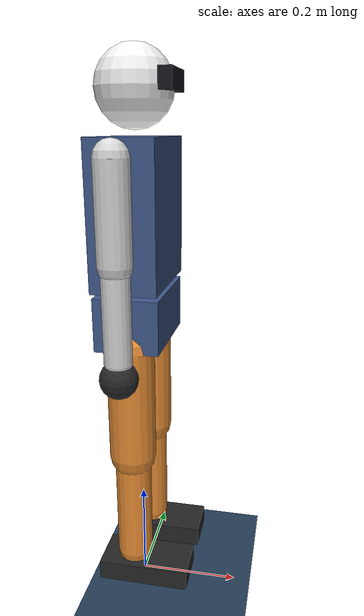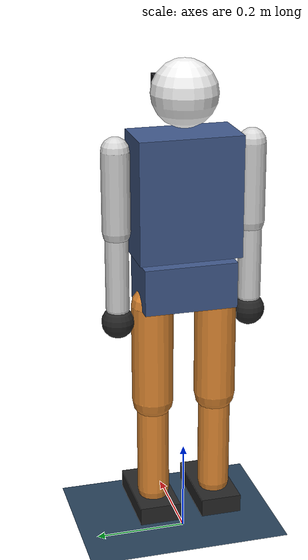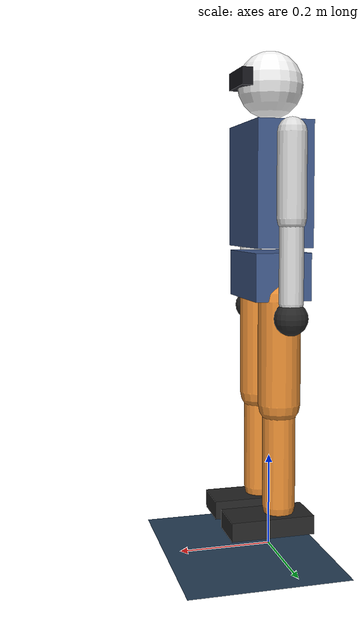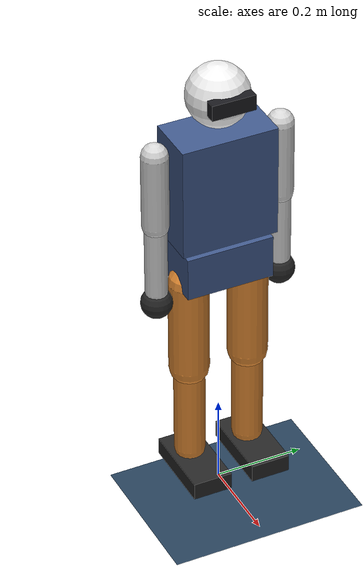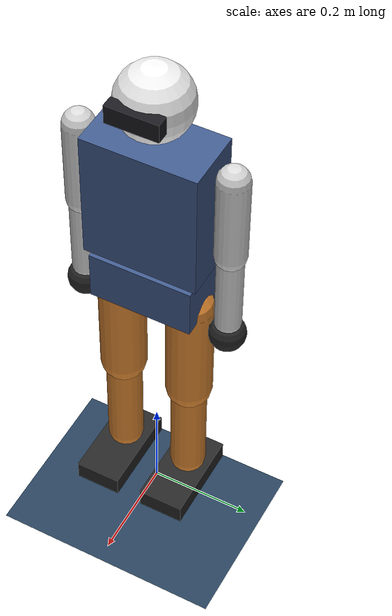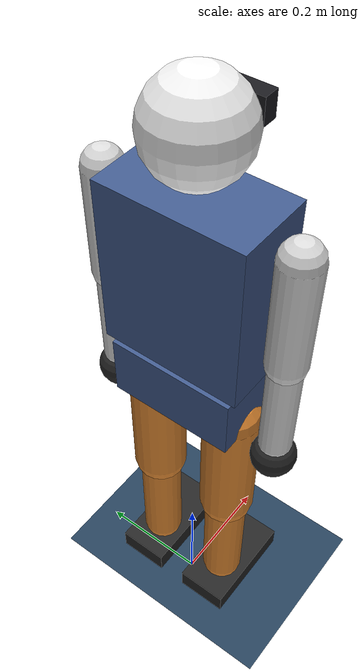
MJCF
<mujoco model="humanoid">
  <compiler angle="radian" autolimits="true"/>

  <!-- Same physics options as the quadrupeds (see quadruped.xml for why). -->
  <option timestep="0.002" integrator="implicitfast" cone="elliptic" impratio="100"/>

  <statistic center="0 0 0.5" extent="1.4"/>
  <visual>
    <headlight diffuse="0.6 0.6 0.6" ambient="0.3 0.3 0.3" specular="0 0 0"/>
    <rgba haze="0.15 0.25 0.35 1"/>
    <global azimuth="135" elevation="-15"/>
    <quality shadowsize="4096"/>
  </visual>

  <asset>
    <texture type="skybox" builtin="gradient" rgb1="0.3 0.5 0.7" rgb2="0 0 0" width="512" height="3072"/>
    <texture type="2d" name="grid" builtin="checker" mark="edge" rgb1="0.2 0.3 0.4" rgb2="0.1 0.2 0.3"
             markrgb="0.8 0.8 0.8" width="300" height="300"/>
    <material name="grid" texture="grid" texrepeat="5 5" texuniform="true" reflectance="0.2"/>
  </asset>

  <default>
    <default class="robot">
      <geom contype="2" conaffinity="1" condim="3" friction="1.0 0.005 0.0001" rgba="0.25 0.35 0.55 1"/>
      <joint type="hinge" armature="0.02" damping="0.5"/>

      <!-- Position motors, strongest where the weight is carried. -->
      <default class="hip_knee">
        <joint axis="0 1 0"/>
        <position kp="150" kv="4" forcerange="-80 80" inheritrange="1"/>
      </default>
      <default class="hip_side">
        <position kp="100" kv="3" forcerange="-50 50" inheritrange="1"/>
      </default>
      <default class="ankle">
        <position kp="80" kv="2" forcerange="-40 40" inheritrange="1"/>
      </default>
      <default class="waist">
        <position kp="100" kv="3" forcerange="-40 40" inheritrange="1"/>
      </default>
      <default class="arm">
        <joint armature="0.01" damping="0.3"/>
        <position kp="30" kv="1" forcerange="-15 15" inheritrange="1"/>
      </default>

      <default class="leg">
        <geom contype="6" conaffinity="4" rgba="0.9 0.55 0.2 1"/>
      </default>
      <default class="limb">
        <geom rgba="0.85 0.85 0.85 1"/>
      </default>
      <default class="foot">
        <geom type="box" size="0.09 0.045 0.02" pos="0.025 0 -0.035" mass="0.5" contype="6" conaffinity="5"
              rgba="0.15 0.15 0.15 1"/>
      </default>
    </default>
  </default>

  <worldbody>
    <light name="sun" pos="0 0 3" dir="0 0 -1" directional="true" castshadow="true"/>
    <geom name="floor" type="plane" size="0 0 0.05" material="grid"/>

    <body name="pelvis" pos="0 0 0.6" childclass="robot">
      <freejoint name="root"/>
      <camera name="track" mode="trackcom" pos="0.9 -2.2 0.6" xyaxes="0.93 0.37 0  -0.08 0.2 0.98"/>
      <geom name="pelvis" type="box" size="0.06 0.1 0.05" mass="3"/>

      <!-- Left leg: hip joint 7 cm to the side, 5 cm below the pelvis center. -->
      <body name="L_thigh" pos="0 0.07 -0.05">
        <joint name="L_hip_yaw" class="hip_side" axis="0 0 1" range="-0.6 0.6"/>
        <joint name="L_hip_roll" class="hip_side" axis="1 0 0" range="-0.35 0.7"/>
        <joint name="L_hip_pitch" class="hip_knee" range="-1.8 0.6"/>
        <geom name="L_thigh" class="leg" type="capsule" size="0.045" fromto="0 0 0  0 0 -0.22" mass="1.8"/>
        <body name="L_shin" pos="0 0 -0.22">
          <joint name="L_knee" class="hip_knee" range="0 2.3"/>
          <geom name="L_shin" class="leg" type="capsule" size="0.035" fromto="0 0 0  0 0 -0.22" mass="1.1"/>
          <body name="L_foot" pos="0 0 -0.22">
            <joint name="L_ankle_pitch" class="ankle" axis="0 1 0" range="-0.7 0.7"/>
            <joint name="L_ankle_roll" class="ankle" axis="1 0 0" range="-0.35 0.35"/>
            <geom name="L_foot" class="foot"/>
          </body>
        </body>
      </body>

      <!-- Right leg: mirrored (roll ranges flipped: outward is negative on the right). -->
      <body name="R_thigh" pos="0 -0.07 -0.05">
        <joint name="R_hip_yaw" class="hip_side" axis="0 0 1" range="-0.6 0.6"/>
        <joint name="R_hip_roll" class="hip_side" axis="1 0 0" range="-0.7 0.35"/>
        <joint name="R_hip_pitch" class="hip_knee" range="-1.8 0.6"/>
        <geom name="R_thigh" class="leg" type="capsule" size="0.045" fromto="0 0 0  0 0 -0.22" mass="1.8"/>
        <body name="R_shin" pos="0 0 -0.22">
          <joint name="R_knee" class="hip_knee" range="0 2.3"/>
          <geom name="R_shin" class="leg" type="capsule" size="0.035" fromto="0 0 0  0 0 -0.22" mass="1.1"/>
          <body name="R_foot" pos="0 0 -0.22">
            <joint name="R_ankle_pitch" class="ankle" axis="0 1 0" range="-0.7 0.7"/>
            <joint name="R_ankle_roll" class="ankle" axis="1 0 0" range="-0.35 0.35"/>
            <geom name="R_foot" class="foot"/>
          </body>
        </body>
      </body>

      <!-- Upper body: twists, leans sideways and bends at the waist. -->
      <body name="torso" pos="0 0 0.05">
        <joint name="waist_yaw" class="waist" axis="0 0 1" range="-1.0 1.0"/>
        <joint name="waist_roll" class="waist" axis="1 0 0" range="-0.5 0.5"/>
        <!-- about +y on an upright segment: positive bends the torso FORWARD -->
        <joint name="waist_pitch" class="waist" axis="0 1 0" range="-0.4 0.8"/>
        <geom name="torso" type="box" size="0.06 0.11 0.13" pos="0 0 0.14" mass="6"/>
        <geom name="head" type="sphere" size="0.07" pos="0 0 0.35" mass="1" rgba="0.95 0.95 0.95 1"/>
        <!-- A dark visor marks the face (+x). -->
        <geom name="visor" type="box" size="0.012 0.05 0.018" pos="0.064 0 0.36" mass="0.01" rgba="0.1 0.1 0.12 1"/>

        <body name="L_upper_arm" pos="0 0.145 0.24">
          <joint name="L_shoulder_pitch" class="arm" axis="0 1 0" range="-2.8 1.0"/>
          <joint name="L_shoulder_roll" class="arm" axis="1 0 0" range="-0.3 2.5"/>
          <geom name="L_upper_arm" class="limb" type="capsule" size="0.03" fromto="0 0 0  0 0 -0.17" mass="0.6"/>
          <body name="L_forearm" pos="0 0 -0.18">
            <joint name="L_elbow" class="arm" axis="0 1 0" range="-2.4 0"/>
            <geom name="L_forearm" class="limb" type="capsule" size="0.025" fromto="0 0 0  0 0 -0.16" mass="0.4"/>
            <geom name="L_hand" type="sphere" size="0.035" pos="0 0 -0.19" mass="0.1" rgba="0.15 0.15 0.15 1"/>
          </body>
        </body>

        <body name="R_upper_arm" pos="0 -0.145 0.24">
          <joint name="R_shoulder_pitch" class="arm" axis="0 1 0" range="-2.8 1.0"/>
          <joint name="R_shoulder_roll" class="arm" axis="1 0 0" range="-2.5 0.3"/>
          <geom name="R_upper_arm" class="limb" type="capsule" size="0.03" fromto="0 0 0  0 0 -0.17" mass="0.6"/>
          <body name="R_forearm" pos="0 0 -0.18">
            <joint name="R_elbow" class="arm" axis="0 1 0" range="-2.4 0"/>
            <geom name="R_forearm" class="limb" type="capsule" size="0.025" fromto="0 0 0  0 0 -0.16" mass="0.4"/>
            <geom name="R_hand" type="sphere" size="0.035" pos="0 0 -0.19" mass="0.1" rgba="0.15 0.15 0.15 1"/>
          </body>
        </body>
      </body>
    </body>
  </worldbody>

  <!-- One motor per joint, in tree order. Order here = order of data.ctrl. -->
  <actuator>
    <position name="L_hip_yaw" joint="L_hip_yaw" class="hip_side"/>
    <position name="L_hip_roll" joint="L_hip_roll" class="hip_side"/>
    <position name="L_hip_pitch" joint="L_hip_pitch" class="hip_knee"/>
    <position name="L_knee" joint="L_knee" class="hip_knee"/>
    <position name="L_ankle_pitch" joint="L_ankle_pitch" class="ankle"/>
    <position name="L_ankle_roll" joint="L_ankle_roll" class="ankle"/>
    <position name="R_hip_yaw" joint="R_hip_yaw" class="hip_side"/>
    <position name="R_hip_roll" joint="R_hip_roll" class="hip_side"/>
    <position name="R_hip_pitch" joint="R_hip_pitch" class="hip_knee"/>
    <position name="R_knee" joint="R_knee" class="hip_knee"/>
    <position name="R_ankle_pitch" joint="R_ankle_pitch" class="ankle"/>
    <position name="R_ankle_roll" joint="R_ankle_roll" class="ankle"/>
    <position name="waist_yaw" joint="waist_yaw" class="waist"/>
    <position name="waist_roll" joint="waist_roll" class="waist"/>
    <position name="waist_pitch" joint="waist_pitch" class="waist"/>
    <position name="L_shoulder_pitch" joint="L_shoulder_pitch" class="arm"/>
    <position name="L_shoulder_roll" joint="L_shoulder_roll" class="arm"/>
    <position name="L_elbow" joint="L_elbow" class="arm"/>
    <position name="R_shoulder_pitch" joint="R_shoulder_pitch" class="arm"/>
    <position name="R_shoulder_roll" joint="R_shoulder_roll" class="arm"/>
    <position name="R_elbow" joint="R_elbow" class="arm"/>
  </actuator>

  <keyframe>
    <key name="home"
         qpos="0 0 0.6  1 0 0 0
               0 0 -0.25 0.5 -0.25 0   0 0 -0.25 0.5 -0.25 0
               0 0 0
               0 0.1 -0.3   0 -0.1 -0.3"
         ctrl="0 0 -0.25 0.5 -0.25 0   0 0 -0.25 0.5 -0.25 0
               0 0 0
               0 0.1 -0.3   0 -0.1 -0.3"/>
    <!-- Pose presets (the web UI's pose buttons apply only ctrl). -->
    <key name="crouch"
         ctrl="0 0 -0.7 1.4 -0.7 0   0 0 -0.7 1.4 -0.7 0   0 0 0.3   -0.4 0.1 -0.6   -0.4 -0.1 -0.6"/>
    <key name="arms_out"
         ctrl="0 0 -0.25 0.5 -0.25 0   0 0 -0.25 0.5 -0.25 0   0 0 0   0 1.5 0   0 -1.5 0"/>
  </keyframe>
</mujoco>
